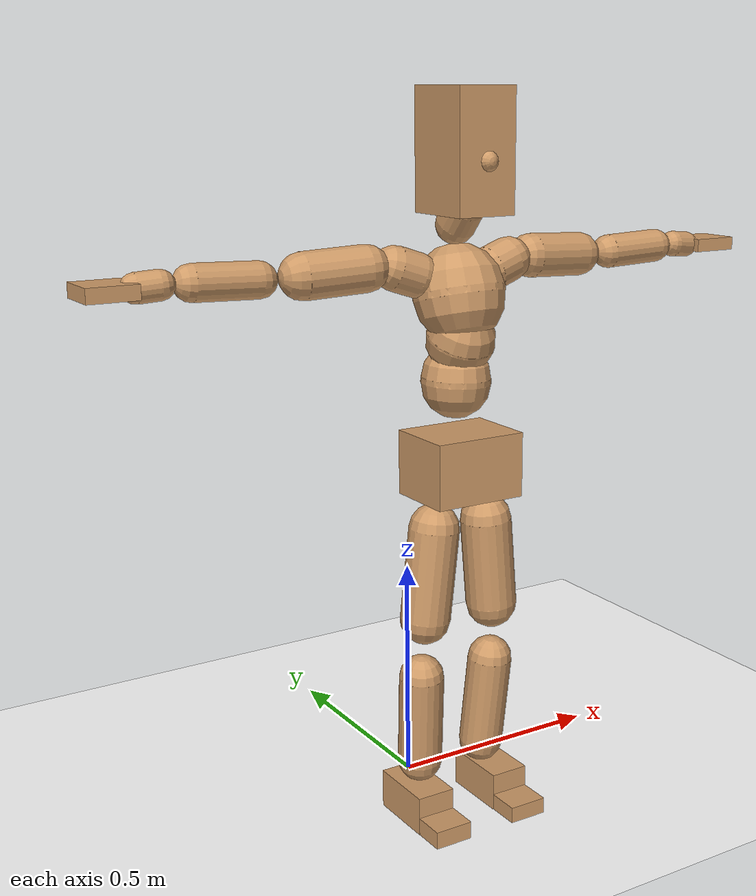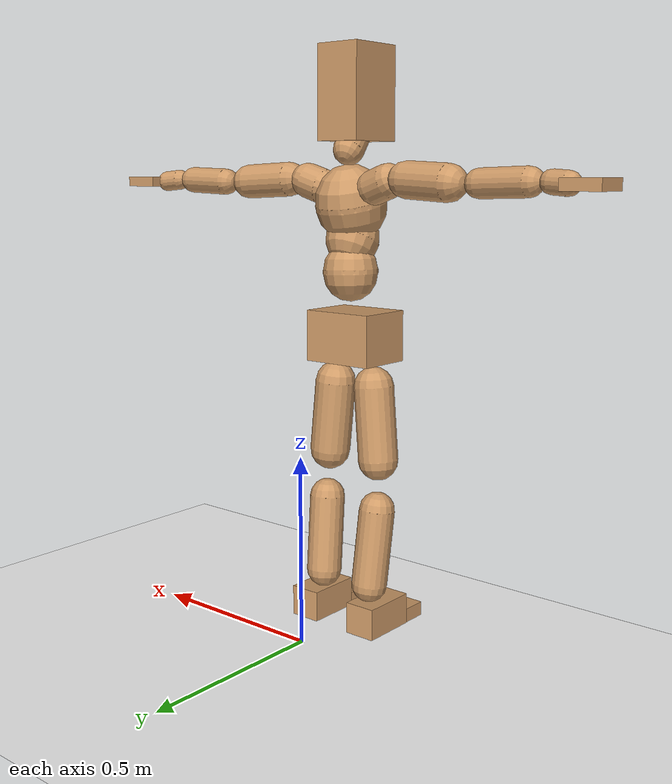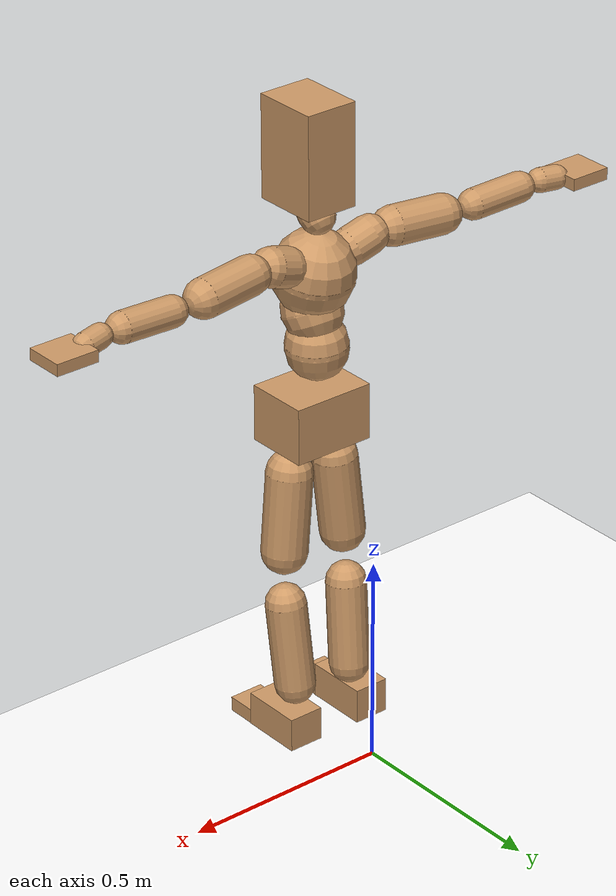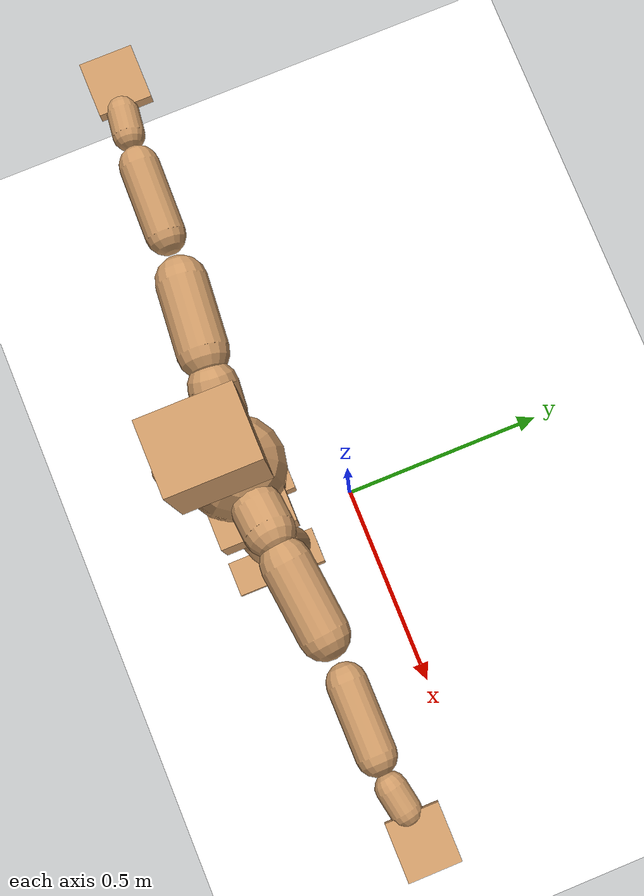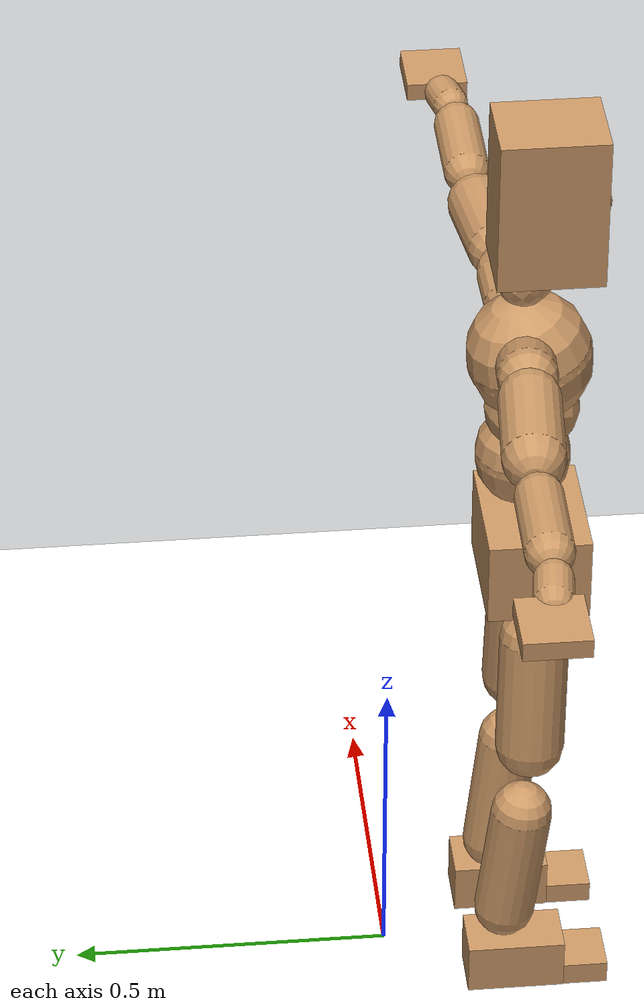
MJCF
<mujoco model="humanoid">
  <option integrator="implicitfast" />

  <visual>
    <global offwidth="1280" offheight="960" />
    <headlight active="1" ambient="0.34 0.34 0.34" diffuse="0.5 0.5 0.5" />
  </visual>

  <default>
    <joint damping="2" stiffness="2" armature="0.01" limited="true" solimplimit="0 .99 .01" />
    <geom condim="1" friction="0.7 0.005 0.0001" solimp=".99 .99 .003" solref="0.015 1" margin="0.001" rgba="0.8 0.6 .4 1" />
    <default class="smplcontact">
      <geom condim="3" friction="1. 0.005 0.0001" solref="0.015 1" solimp="0.98 0.98 0.001" priority="1" />
    </default>
    <default class="stiff_medium">
      <joint stiffness="10" />
    </default>
    <default class="stiff_medium_higher">
      <joint stiffness="50" />
    </default>
    <default class="stiff_high">
      <joint stiffness="100" />
    </default>
  </default>

  <asset>
    <texture type="skybox" builtin="gradient" rgb1="0.99 0.99 0.99" rgb2="0.608 0.828 0.892" width="100" />
    <texture builtin="flat" height="1278" mark="cross" markrgb="1 1 1" name="texgeom" random="0.01" rgb1="0.8 0.6 0.4" rgb2="0.8 0.6 0.4" type="cube" width="127" />
    <texture name="texplane" type="2d" builtin="checker" markrgb="1 1 1" rgb1="0.756 0.772 0.76" rgb2="0.6 0.6 0.6" width="100" height="100" />
    <material name="MatPlane" reflectance="0.5" texture="texplane" texrepeat="1 1" texuniform="true" />
    <material name="geom" texture="texgeom" texuniform="true" />
  </asset>

  <worldbody>
    <light name="tracking_light" pos="0 0 7" dir="0 0 -1" directional="true" cutoff="100" exponent="1" diffuse="1 1 1" specular="0.1 0.1 0.1" mode="trackcom" />
    <camera name="back" pos="0 3 2.4" xyaxes="-1 0 0 0 -1 2" mode="trackcom" />
    <camera name="side" pos="-3 0 2.4" xyaxes="0 -1 0 1 0 2" mode="trackcom" />
    <camera name="front_side" pos="-2.8 -2.8 0.8" xyaxes="0.5 -0.5 0 0.1 0.1 1" mode="trackcom" />
    <geom condim="3" name="floor" pos="0 0 0" rgba="1 1 1 1" size="100 100 .2" type="plane" material="MatPlane" />
    <body name="Pelvis" pos="-0.0018 -0.2233 0.804655" euler="90 0 0">
      <site name="Pelvis" size="0.01" />
      <freejoint name="Pelvis" />
      <geom type="box" pos="-0.0000 -0.0121 -0.0055" size="0.100882 0.0681351 0.0783271" quat="1.0000 0.0000 0.0000 0.0000" density="3165.830099" name="Pelvis" />
      <body name="L_Hip" pos="0.0595963 -0.0783755 -0.005831">
        <joint name="L_Hip_x" type="hinge" pos="0 0 0" axis="1 0 0" stiffness="5.858664803921569" range="-160.0 22.92" class="stiff_medium" damping="8.157736128308313" armature="0.00504845091018475"/>
        <joint name="L_Hip_y" type="hinge" pos="0 0 0" axis="0 1 0" stiffness="5.863729215686274" range="-70.0 70.0" class="stiff_medium" damping="5.549398567342286" armature="0.005251917905219361"/>
        <joint name="L_Hip_z" type="hinge" pos="0 0 0" axis="0 0 1" stiffness="5.862767647058824" range="-28.65 90.0" class="stiff_medium" damping="5.4402314378193095" armature="0.005048147884879089"/>
        <geom type="capsule" density="2040.816327" fromto="0.00591675 -0.0643125 -0.00077175 0.0234955 -0.257422 -0.003087" size="0.0545812" name="L_Hip" />
        <body name="L_Knee" pos="0.0294122 -0.321734 -0.00385875">
          <joint name="L_Knee_x" type="hinge" pos="0 0 0" axis="1 0 0" range="-5.16 171.89" damping="4.373676816880887" armature="0.005082830100464531" stiffness="1.1760825490196078"/>
          <joint name="L_Knee_y" type="hinge" pos="0 0 0" axis="0 1 0" range="-4.58 6.88" damping="4.455800905934737" armature="0.005287404884048694" stiffness="1.1734349215686275"/>
          <joint name="L_Knee_z" type="hinge" pos="0 0 0" axis="0 0 1" range="-6.88 4.58" damping="4.376293001364985" armature="0.005081346337037272" stiffness="1.1778337843137254"/>
          <geom type="capsule" density="1234.567901" fromto="-0.00231525 -0.068257 -0.00746025 -0.00934675 -0.273028 -0.0300125" size="0.0480138" name="L_Knee" />
          <body name="L_Ankle" pos="-0.011662 -0.341285 -0.0374728">
            <joint name="L_Ankle_x" type="hinge" pos="0 0 0" axis="1 0 0" range="-45.84 45.84" class="stiff_medium" damping="3.3708241485250974" armature="0.005265384386623121" stiffness="5.9943156862745095"/>
            <joint name="L_Ankle_y" type="hinge" pos="0 0 0" axis="0 1 0" range="-74.48 22.92" class="stiff_medium" damping="1.6868449891564883" armature="0.005274340362962429" stiffness="5.994316764705882"/>
            <joint name="L_Ankle_z" type="hinge" pos="0 0 0" axis="0 0 1" range="-4.58 4.58" class="stiff_medium" damping="3.3923859416463378" armature="0.005332957912796404" stiffness="5.994319019607843"/>
            <geom type="box" pos="0.0199798 -0.0204943 0.0207515" size="0.0428663 0.04118 0.0754375" quat="1.0000 0.0000 0.0000 0.0000" density="449.071558" name="L_Ankle" class="smplcontact" />
            <body name="L_Toe" pos="0.022638 -0.0478485 0.1023">
              <joint name="L_Toe_x" type="hinge" pos="0 0 0" axis="1 0 0" range="-91.67 22.92" armature="0.005366936148607184" damping="1.1343911155734243" stiffness="1.1988620392156863"/>
              <joint name="L_Toe_y" type="hinge" pos="0 0 0" axis="0 1 0" range="-4.58 4.58" armature="0.0054080350435417495" damping="1.1387262431516134" stiffness="1.1988619215686276"/>
              <joint name="L_Toe_z" type="hinge" pos="0 0 0" axis="0 0 1" range="-4.58 4.58" armature="0.005491136579323398" damping="1.1474414573845786" stiffness="1.1988610000000002"/>
              <geom type="box" pos="-0.0025725 0.00471625 0.021266" size="0.0424225 0.01775 0.04402" quat="1.0000 0.0000 0.0000 0.0000" density="423.206892" name="L_Toe" class="smplcontact" />
            </body>
          </body>
        </body>
      </body>
      <body name="R_Hip" pos="-0.0580528 -0.0776037 -0.00368725">
        <joint name="R_Hip_x" type="hinge" pos="0 0 0" axis="1 0 0" stiffness="5.858664803921569" range="-160.0 22.92" class="stiff_medium" damping="8.157736128308313" armature="0.00504845091018475"/>
        <joint name="R_Hip_y" type="hinge" pos="0 0 0" axis="0 1 0" stiffness="5.863729215686274" range="-70.0 70.0" class="stiff_medium" damping="5.549398567342286" armature="0.005251917905219361"/>
        <joint name="R_Hip_z" type="hinge" pos="0 0 0" axis="0 0 1" stiffness="5.862767647058824" range="-90.0 28.65" class="stiff_medium" damping="5.4402314378193095" armature="0.005048147884879089"/>
        <geom type="capsule" density="2040.816327" fromto="-0.00660275 -0.0655987 -0.0015435 -0.0262395 -0.262481 -0.00608825" size="0.0537825" name="R_Hip" />
        <body name="R_Knee" pos="-0.0328423 -0.32808 -0.00763175">
          <joint name="R_Knee_x" type="hinge" pos="0 0 0" axis="1 0 0" range="-5.16 171.89" damping="4.373676816880887" armature="0.005082830100464531" stiffness="1.1760825490196078"/>
          <joint name="R_Knee_y" type="hinge" pos="0 0 0" axis="0 1 0" range="-6.88 4.58" damping="4.455800905934737" armature="0.005287404884048694" stiffness="1.1734349215686275"/>
          <joint name="R_Knee_z" type="hinge" pos="0 0 0" axis="0 0 1" range="-4.58 6.88" damping="4.376293001364985" armature="0.005081346337037272" stiffness="1.1778337843137254"/>
          <geom type="capsule" density="1234.567901" fromto="0.002744 -0.0683427 -0.00728875 0.0108045 -0.273285 -0.0289835" size="0.0480138" name="R_Knee" />
          <body name="R_Ankle" pos="0.0135485 -0.341628 -0.0362722">
            <joint name="R_Ankle_x" type="hinge" pos="0 0 0" axis="1 0 0" range="-45.84 45.84" class="stiff_medium" damping="3.3708241485250974" armature="0.005265384386623121" stiffness="5.9943156862745095"/>
            <joint name="R_Ankle_y" type="hinge" pos="0 0 0" axis="0 1 0" range="-22.92 74.48" class="stiff_medium" damping="1.6868449891564883" armature="0.005274340362962429" stiffness="5.994316764705882"/>
            <joint name="R_Ankle_z" type="hinge" pos="0 0 0" axis="0 0 1" range="-4.58 4.58" class="stiff_medium" damping="3.3923859416463378" armature="0.005332957912796404" stiffness="5.994319019607843"/>
            <geom type="box" pos="-0.018179 -0.0149205 0.021952" size="0.0428663 0.0424225 0.0767687" quat="1.0000 0.0000 0.0000 0.0000" density="434.700981" name="R_Ankle" class="smplcontact" />
            <body name="R_Toe" pos="-0.0217805 -0.0412457 0.10573">
              <joint name="R_Toe_x" type="hinge" pos="0 0 0" axis="1 0 0" range="-91.67 22.92" armature="0.005366936148607184" damping="1.1343911155734243" stiffness="1.1988620392156863"/>
              <joint name="R_Toe_y" type="hinge" pos="0 0 0" axis="0 1 0" range="-4.58 4.58" armature="0.0054080350435417495" damping="1.1387262431516134" stiffness="1.1988619215686276"/>
              <joint name="R_Toe_z" type="hinge" pos="0 0 0" axis="0 0 1" range="-4.58 4.58" armature="0.005491136579323398" damping="1.1474414573845786" stiffness="1.1988610000000002"/>
              <geom type="box" pos="0.0036015 0.00385875 0.0194653" size="0.0425112 0.01917 0.0437537" quat="1.0000 0.0000 0.0000 0.0000" density="407.384095" name="R_Toe" class="smplcontact" />
            </body>
          </body>
        </body>
      </body>
      <body name="Torso" pos="-0.0022655 0.0987758 -0.0241955">
        <joint name="Torso_x" type="hinge" pos="0 0 0" axis="1 0 0" range="-25.78 57.3" class="stiff_medium" damping="12.039171533837884" armature="0.00788915989130321" stiffness="8.16544632653061"/>
        <joint name="Torso_y" type="hinge" pos="0 0 0" axis="0 1 0" range="-57.3 57.3" class="stiff_high" damping="13.382041007777447" armature="0.00536794449664452" stiffness="83.402046"/>
        <joint name="Torso_z" type="hinge" pos="0 0 0" axis="0 0 1" range="-34.38 34.38" class="stiff_high" damping="15.04605082396192" armature="0.0070186082636561654" stiffness="80.63694285714286"/>
        <geom type="capsule" density="2040.816327" fromto="0.0022655 0.055097 0.0004531 0.0027186 0.0673307 0.00054372" size="0.0725705" name="Torso" />
        <body name="Spine" pos="0.0049841 0.122518 0.00099682">
          <joint name="Spine_x" type="hinge" pos="0 0 0" axis="1 0 0" stiffness="8.297193921568628" range="-25.78 57.3" class="stiff_medium" damping="12.659779290950436" armature="0.00858496462568865"/>
          <joint name="Spine_y" type="hinge" pos="0 0 0" axis="0 1 0" stiffness="8.448736938775511" range="-57.3 57.3" class="stiff_high" damping="5.379984706205011" armature="0.005352914666555094"/>
          <joint name="Spine_z" type="hinge" pos="0 0 0" axis="0 0 1" stiffness="16.868757959183675" range="-34.38 34.38" class="stiff_high" damping="9.08524195232766" armature="0.006796062935797872"/>
          <geom type="capsule" density="2040.816327" fromto="0.00063434 0.0215676 0.0103307 0.00072496 0.0263704 0.0126868" size="0.0712494" name="Spine" />
          <body name="Chest" pos="0.0013593 0.047938 0.0230175">
            <joint name="Chest_x" type="hinge" pos="0 0 0" axis="1 0 0" stiffness="8.55014304347826" range="-25.78 57.3" class="stiff_medium" damping="13.127413391062227" armature="0.008957821925111208"/>
            <joint name="Chest_y" type="hinge" pos="0 0 0" axis="0 1 0" stiffness="7.7291955" range="-57.3 57.3" class="stiff_high" damping="5.136209430674413" armature="0.005332995061498634"/>
            <joint name="Chest_z" type="hinge" pos="0 0 0" axis="0 0 1" stiffness="17.504206808510638" range="-34.38 34.38" class="stiff_high" damping="9.147043915709407" armature="0.0066387543062597825"/>
            <geom type="capsule" density="2040.816327" fromto="-0.00081558 0.0618028 -0.0156773 -0.0009062 0.0754865 -0.0192114" size="0.0945587" name="Chest" />
            <body name="Neck" pos="-0.00253736 0.193836 -0.038876">
              <joint name="Neck_x" type="hinge" pos="0 0 0" axis="1 0 0" range="-28.65 57.3" class="stiff_medium_higher" damping="11.998311156594458" armature="0.01233371859807078" stiffness="58.360124509803924"/>
              <joint name="Neck_y" type="hinge" pos="0 0 0" axis="0 1 0" range="-40.11 40.11" class="stiff_medium_higher" damping="12.127396289478726" armature="0.012534841074194407" stiffness="58.66597745098039"/>
              <joint name="Neck_z" type="hinge" pos="0 0 0" axis="0 0 1" range="-40.11 40.11" class="stiff_medium_higher" damping="12.098455989329596" armature="0.012345106429410238" stiffness="59.283667647058834"/>
              <geom type="capsule" density="1000" fromto="0.0009062 0.0117806 0.00933386 0.00371542 0.0471224 0.0372448" size="0.0411453" name="Neck" />
              <body name="Head" pos="0.00529776 0.066222 0.0522644">
                <joint name="Head_x" type="hinge" pos="0 0 0" axis="1 0 0" range="-28.65 57.3" class="stiff_medium_higher" damping="2.463602297655868" armature="0.01264024522543157" stiffness="60.019961764705876"/>
                <joint name="Head_y" type="hinge" pos="0 0 0" axis="0 1 0" range="-40.11 40.11" class="stiff_medium_higher" damping="2.5081869877916896" armature="0.013101890437867114" stiffness="60.019983333333336"/>
                <joint name="Head_z" type="hinge" pos="0 0 0" axis="0 0 1" range="-40.11 40.11" class="stiff_medium_higher" damping="2.4613733842754315" armature="0.012617385631485043" stiffness="60.019950980392146"/>
                <geom type="box" pos="-0.00427896 0.0892469 -0.0118181" size="0.0640057 0.121885 0.0802712" quat="1.0000 0.0000 0.0000 0.0000" density="1018.069894" name="Head" />
                <geom type="capsule" name="nose" size="0.021124 0.010562" pos="0 0.071316 0.05094" quat="1 0 0 0" mass="0" contype="0" conaffinity="0" />
              </body>
            </body>
            <body name="L_Thorax" pos="0.0684614 0.105733 -0.0296261">
              <joint name="L_Thorax_x" type="hinge" pos="0 0 0" axis="1 0 0" range="-10.89 4.58" class="stiff_medium_higher" damping="11.286888481800954" armature="0.005312322668026983" stiffness="29.97602450980392"/>
              <joint name="L_Thorax_y" type="hinge" pos="0 0 0" axis="0 1 0" range="-28.65 17.19" class="stiff_medium_higher" damping="11.181288330629739" armature="0.005216124048121922" stiffness="29.960274999999996"/>
              <joint name="L_Thorax_z" type="hinge" pos="0 0 0" axis="0 0 1" range="-31.51 40.11" class="stiff_medium_higher" damping="11.181237861054253" armature="0.005216037190089436" stiffness="29.960503431372548"/>
              <geom type="capsule" density="1000" fromto="0.0158122 0.00529968 -0.00156384 0.0632486 0.0211987 -0.00616848" size="0.0462387" name="L_Thorax" />
              <body name="L_Shoulder" pos="0.0790608 0.0264984 -0.00773232">
                <joint name="L_Shoulder_x" type="hinge" pos="0 0 0" axis="1 0 0" range="-97.4 97.4" class="stiff_medium" damping="3.398666602922135" armature="0.005350103227600931" stiffness="5.99725431372549"/>
                <joint name="L_Shoulder_y" type="hinge" pos="0 0 0" axis="0 1 0" range="-108.86 80.21" class="stiff_medium" damping="3.355897158561662" armature="0.005219560579754148" stiffness="5.993504607843137"/>
                <joint name="L_Shoulder_z" type="hinge" pos="0 0 0" axis="0 0 1" range="-97.4 85.94" class="stiff_medium" damping="3.355852138773699" armature="0.0052194481154941835" stiffness="5.99347294117647"/>
                <geom type="capsule" density="1000" fromto="0.0450907 -0.00225888 -0.0047784 0.18045 -0.00886176 -0.0191136" size="0.0458838" name="L_Shoulder" />
                <body name="L_Elbow" pos="0.22554 -0.0111206 -0.023892">
                  <joint name="L_Elbow_x" type="hinge" pos="0 0 0" axis="1 0 0" range="-17.19 4.58" damping="2.850367207384555" armature="0.005410333252588446" stiffness="1.201344588235294"/>
                  <joint name="L_Elbow_y" type="hinge" pos="0 0 0" axis="0 1 0" range="-180.0 17.19" damping="2.8041443950265847" armature="0.005236300841579246" stiffness="1.201340568627451"/>
                  <joint name="L_Elbow_z" type="hinge" pos="0 0 0" axis="0 0 1" range="-100.84 4.58" damping="2.8040717701946605" armature="0.005235710865560959" stiffness="1.201413705882353"/>
                  <geom type="capsule" density="1000" fromto="0.0432662 0.00156384 -0.00017376 0.173239 0.00625536 -0.00078192" size="0.0359437" name="L_Elbow" />
                  <body name="L_Wrist" pos="0.216505 0.0078192 -0.00104256">
                    <joint name="L_Wrist_x" type="hinge" pos="0 0 0" axis="1 0 0" range="-180.0 22.92" armature="0.0054277975453075" damping="1.1460982892064178" stiffness="1.2100131568627452"/>
                    <joint name="L_Wrist_y" type="hinge" pos="0 0 0" axis="0 1 0" range="-17.19 17.19" armature="0.005293043706218315" damping="1.1314797091739586" stiffness="1.209366862745098"/>
                    <joint name="L_Wrist_z" type="hinge" pos="0 0 0" axis="0 0 1" range="-22.92 22.92" armature="0.005285531244232116" damping="1.1307752240654079" stiffness="1.2095781372549022"/>
                    <geom type="capsule" density="1000" fromto="0.0145958 -0.00139008 -0.0026064 0.0583834 -0.0056472 -0.0104256" size="0.0282225" name="L_Wrist" class="smplcontact" />
                    <body name="L_Hand" pos="0.0729792 -0.00712416 -0.0129451">
                      <joint name="L_Hand_x" type="hinge" pos="0 0 0" axis="1 0 0" range="-17.19 17.19" armature="0.005496063469789025" damping="1.1554951138080702" stiffness="1.2146593333333335"/>
                      <joint name="L_Hand_y" type="hinge" pos="0 0 0" axis="0 1 0" range="-51.57 51.57" armature="0.0053851004928507674" damping="1.143771088870239" stiffness="1.2146591372549023"/>
                      <joint name="L_Hand_z" type="hinge" pos="0 0 0" axis="0 0 1" range="-91.67 91.67" armature="0.00535552189235073" damping="1.1406255184100385" stiffness="1.2146590000000002"/>
                      <geom type="box" pos="0.0428318 0.0008688 -0.00503904" size="0.0519187 0.0140225 0.0477475" quat="1.0000 0.0000 0.0000 0.0000" density="400.552564" name="L_Hand" class="smplcontact" />
                    </body>
                  </body>
                </body>
              </body>
            </body>
            <body name="R_Thorax" pos="-0.0710678 0.103213 -0.0335357">
              <joint name="R_Thorax_x" type="hinge" pos="0 0 0" axis="1 0 0" range="-10.89 4.58" class="stiff_medium_higher" damping="11.286888481800954" armature="0.005312322668026983" stiffness="29.97602450980392"/>
              <joint name="R_Thorax_y" type="hinge" pos="0 0 0" axis="0 1 0" range="-17.19 28.65" class="stiff_medium_higher" damping="11.181288330629739" armature="0.005216124048121922" stiffness="29.960274999999996"/>
              <joint name="R_Thorax_z" type="hinge" pos="0 0 0" axis="0 0 1" range="-40.11 31.51" class="stiff_medium_higher" damping="11.181237861054253" armature="0.005216037190089436" stiffness="29.960503431372548"/>
              <geom type="capsule" density="1000" fromto="-0.016681 0.0056472 -0.00156384 -0.0667238 0.0225888 -0.00634224" size="0.0453512" name="R_Thorax" />
              <body name="R_Shoulder" pos="-0.0834048 0.0283229 -0.00790608">
                <joint name="R_Shoulder_x" type="hinge" pos="0 0 0" axis="1 0 0" range="-97.4 97.4" class="stiff_medium" damping="3.398666602922135" armature="0.005350103227600931" stiffness="5.99725431372549"/>
                <joint name="R_Shoulder_y" type="hinge" pos="0 0 0" axis="0 1 0" range="-80.21 108.86" class="stiff_medium" damping="3.355897158561662" armature="0.005219560579754148" stiffness="5.993504607843137"/>
                <joint name="R_Shoulder_z" type="hinge" pos="0 0 0" axis="0 0 1" range="-85.94 97.4" class="stiff_medium" damping="3.355852138773699" armature="0.0052194481154941835" stiffness="5.99347294117647"/>
                <geom type="capsule" density="1000" fromto="-0.0440482 -0.00234576 -0.00373584 -0.176366 -0.00929616 -0.0148565" size="0.0471263" name="R_Shoulder" />
                <body name="R_Elbow" pos="-0.220415 -0.011555 -0.0185923">
                  <joint name="R_Elbow_x" type="hinge" pos="0 0 0" axis="1 0 0" range="-17.19 4.58" damping="2.850367207384555" armature="0.005410333252588446" stiffness="1.201344588235294"/>
                  <joint name="R_Elbow_y" type="hinge" pos="0 0 0" axis="0 1 0" range="-17.19 180.0" damping="2.8041443950265847" armature="0.005236300841579246" stiffness="1.201340568627451"/>
                  <joint name="R_Elbow_z" type="hinge" pos="0 0 0" axis="0 0 1" range="-4.58 100.84" damping="2.8040717701946605" armature="0.005235710865560959" stiffness="1.201413705882353"/>
                  <geom type="capsule" density="1000" fromto="-0.0443957 0.00139008 -0.00095568 -0.177409 0.00538656 -0.00382272" size="0.03621" name="R_Elbow" />
                  <body name="R_Wrist" pos="-0.221805 0.00677664 -0.00486528">
                    <joint name="R_Wrist_x" type="hinge" pos="0 0 0" axis="1 0 0" range="-180.0 22.92" armature="0.0054277975453075" damping="1.1460982892064178" stiffness="1.2100131568627452"/>
                    <joint name="R_Wrist_y" type="hinge" pos="0 0 0" axis="0 1 0" range="-17.19 17.19" armature="0.005293043706218315" damping="1.1314797091739586" stiffness="1.209366862745098"/>
                    <joint name="R_Wrist_z" type="hinge" pos="0 0 0" axis="0 0 1" range="-22.92 22.92" armature="0.005285531244232116" damping="1.1307752240654079" stiffness="1.2095781372549022"/>
                    <geom type="capsule" density="1000" fromto="-0.0146827 -0.00104256 -0.00182448 -0.0588178 -0.00425712 -0.00721104" size="0.0289325" name="R_Wrist" class="smplcontact" />
                    <body name="R_Hand" pos="-0.0735005 -0.00529968 -0.00894864">
                      <joint name="R_Hand_x" type="hinge" pos="0 0 0" axis="1 0 0" range="-17.19 17.19" armature="0.005496063469789025" damping="1.1554951138080702" stiffness="1.2146593333333335"/>
                      <joint name="R_Hand_y" type="hinge" pos="0 0 0" axis="0 1 0" range="-51.57 51.57" armature="0.0053851004928507674" damping="1.143771088870239" stiffness="1.2146591372549023"/>
                      <joint name="R_Hand_z" type="hinge" pos="0 0 0" axis="0 0 1" range="-91.67 91.67" armature="0.00535552189235073" damping="1.1406255184100385" stiffness="1.2146590000000002"/>
                      <geom type="box" pos="-0.0401386 -0.00078192 -0.00686352" size="0.0504987 0.014555 0.0484575" quat="1.0000 0.0000 0.0000 0.0000" density="403.679611" name="R_Hand" class="smplcontact" />
                    </body>
                  </body>
                </body>
              </body>
            </body>
          </body>
        </body>
      </body>
    </body>
  </worldbody>
  <actuator>
    <general name="L_Hip_x" joint="L_Hip_x" biastype="affine" gainprm="168.33705336355118" biasprm="-126.15155956197023 -105.45596647058825 -1.0876981504411085" ctrllimited="true" ctrlrange="-1 1" forcerange="-210.9119329411765 210.9119329411765" />
    <general name="L_Hip_y" joint="L_Hip_y" biastype="affine" gainprm="128.95014038647886" biasprm="0.0 -105.54712588235293 -1.1098797134684573" ctrllimited="true" ctrlrange="-1 1" forcerange="-211.09425176470586 211.09425176470586" />
    <general name="L_Hip_z" joint="L_Hip_z" biastype="affine" gainprm="109.2673227437685" biasprm="56.498527183566765 -105.52981764705883 -1.088046287563862" ctrllimited="true" ctrlrange="-1 1" forcerange="-211.05963529411767 211.05963529411767" />
    <general name="L_Knee_x" joint="L_Knee_x" biastype="affine" gainprm="163.53985875237092" biasprm="154.0073462286518 -105.84742941176471 -1.0934192042202218" ctrllimited="true" ctrlrange="-1 1" forcerange="-211.69485882352942 211.69485882352942" />
    <general name="L_Knee_y" joint="L_Knee_y" biastype="affine" gainprm="10.561692225773275" biasprm="2.1197113542127863 -105.60914294117647 -1.1139502264836842" ctrllimited="true" ctrlrange="-1 1" forcerange="-211.21828588235294 211.21828588235294" />
    <general name="L_Knee_z" joint="L_Knee_z" biastype="affine" gainprm="10.601284906716362" biasprm="-2.1276575292711724 -106.00504058823529 -1.0940732503412463" ctrllimited="true" ctrlrange="-1 1" forcerange="-212.01008117647058 212.01008117647058" />
    <general name="L_Ankle_x" joint="L_Ankle_x" biastype="affine" gainprm="43.162252098599154" biasprm="0.0 -53.94884117647059 -1.1236080495083658" ctrllimited="true" ctrlrange="-1 1" forcerange="-107.89768235294117 107.89768235294117" />
    <general name="L_Ankle_y" joint="L_Ankle_y" biastype="affine" gainprm="45.855193179991495" biasprm="-24.27406324805299 -53.94885088235294 -1.1245633261043255" ctrllimited="true" ctrlrange="-1 1" forcerange="-107.89770176470589 107.89770176470589" />
    <general name="L_Ankle_z" joint="L_Ankle_z" biastype="affine" gainprm="4.312461268317647" biasprm="0.0 -53.94887117647059 -1.1307953138821125" ctrllimited="true" ctrlrange="-1 1" forcerange="-107.89774235294118 107.89774235294118" />
    <general name="L_Toe_x" joint="L_Toe_x" biastype="affine" gainprm="43.15844623010053" biasprm="-25.893561203590288 -43.15903341176471 -0.4537564462293697" ctrllimited="true" ctrlrange="-1 1" forcerange="-86.31806682352942 86.31806682352942" />
    <general name="L_Toe_y" joint="L_Toe_y" biastype="affine" gainprm="3.4499635978091856" biasprm="0.0 -43.1590291764706 -0.4554904972606454" ctrllimited="true" ctrlrange="-1 1" forcerange="-86.3180583529412 86.3180583529412" />
    <general name="L_Toe_z" joint="L_Toe_z" biastype="affine" gainprm="3.449960945812187" biasprm="0.0 -43.15899600000001 -0.4589765829538315" ctrllimited="true" ctrlrange="-1 1" forcerange="-86.31799200000002 86.31799200000002" />
    <general name="R_Hip_x" joint="R_Hip_x" biastype="affine" gainprm="168.33705336355118" biasprm="-126.15155956197023 -105.45596647058825 -1.0876981504411085" ctrllimited="true" ctrlrange="-1 1" forcerange="-210.9119329411765 210.9119329411765" />
    <general name="R_Hip_y" joint="R_Hip_y" biastype="affine" gainprm="128.95014038647886" biasprm="0.0 -105.54712588235293 -1.1098797134684573" ctrllimited="true" ctrlrange="-1 1" forcerange="-211.09425176470586 211.09425176470586" />
    <general name="R_Hip_z" joint="R_Hip_z" biastype="affine" gainprm="109.2673227437685" biasprm="-56.498527183566765 -105.52981764705883 -1.088046287563862" ctrllimited="true" ctrlrange="-1 1" forcerange="-211.05963529411767 211.05963529411767" />
    <general name="R_Knee_x" joint="R_Knee_x" biastype="affine" gainprm="163.53985875237092" biasprm="154.0073462286518 -105.84742941176471 -1.0934192042202218" ctrllimited="true" ctrlrange="-1 1" forcerange="-211.69485882352942 211.69485882352942" />
    <general name="R_Knee_y" joint="R_Knee_y" biastype="affine" gainprm="10.561692225773275" biasprm="-2.1197113542127863 -105.60914294117647 -1.1139502264836842" ctrllimited="true" ctrlrange="-1 1" forcerange="-211.21828588235294 211.21828588235294" />
    <general name="R_Knee_z" joint="R_Knee_z" biastype="affine" gainprm="10.601284906716362" biasprm="2.1276575292711724 -106.00504058823529 -1.0940732503412463" ctrllimited="true" ctrlrange="-1 1" forcerange="-212.01008117647058 212.01008117647058" />
    <general name="R_Ankle_x" joint="R_Ankle_x" biastype="affine" gainprm="43.162252098599154" biasprm="0.0 -53.94884117647059 -1.1236080495083658" ctrllimited="true" ctrlrange="-1 1" forcerange="-107.89768235294117 107.89768235294117" />
    <general name="R_Ankle_y" joint="R_Ankle_y" biastype="affine" gainprm="45.855193179991495" biasprm="24.27406324805299 -53.94885088235294 -1.1245633261043255" ctrllimited="true" ctrlrange="-1 1" forcerange="-107.89770176470589 107.89770176470589" />
    <general name="R_Ankle_z" joint="R_Ankle_z" biastype="affine" gainprm="4.312461268317647" biasprm="0.0 -53.94887117647059 -1.1307953138821125" ctrllimited="true" ctrlrange="-1 1" forcerange="-107.89774235294118 107.89774235294118" />
    <general name="R_Toe_x" joint="R_Toe_x" biastype="affine" gainprm="43.15844623010053" biasprm="-25.893561203590288 -43.15903341176471 -0.4537564462293697" ctrllimited="true" ctrlrange="-1 1" forcerange="-86.31806682352942 86.31806682352942" />
    <general name="R_Toe_y" joint="R_Toe_y" biastype="affine" gainprm="3.4499635978091856" biasprm="0.0 -43.1590291764706 -0.4554904972606454" ctrllimited="true" ctrlrange="-1 1" forcerange="-86.3180583529412 86.3180583529412" />
    <general name="R_Toe_z" joint="R_Toe_z" biastype="affine" gainprm="3.449960945812187" biasprm="0.0 -43.15899600000001 -0.4589765829538315" ctrllimited="true" ctrlrange="-1 1" forcerange="-86.31799200000002 86.31799200000002" />
    <general name="Torso_x" joint="Torso_x" biastype="affine" gainprm="142.08068096602494" biasprm="53.90446634628196 -195.97071183673464 -3.210445742356769" ctrllimited="true" ctrlrange="-1 1" forcerange="-293.95606775510197 293.95606775510197" />
    <general name="Torso_y" joint="Torso_y" biastype="affine" gainprm="200.17965482607988" biasprm="0.0 -200.1649104 -2.6764082015554895" ctrllimited="true" ctrlrange="-1 1" forcerange="-300.24736559999997 300.24736559999997" />
    <general name="Torso_z" joint="Torso_z" biastype="affine" gainprm="116.12575106879169" biasprm="0.0 -193.52866285714285 -3.009210164792384" ctrllimited="true" ctrlrange="-1 1" forcerange="-290.29299428571426 290.29299428571426" />
    <general name="Spine_x" joint="Spine_x" biastype="affine" gainprm="144.3731200159049" biasprm="54.774202490386635 -199.1326541176471 -3.3759411442534497" ctrllimited="true" ctrlrange="-1 1" forcerange="-298.6989811764706 298.6989811764706" />
    <general name="Spine_y" joint="Spine_y" biastype="affine" gainprm="202.78462282812973" biasprm="0.0 -202.76968653061226 -2.6899923531025056" ctrllimited="true" ctrlrange="-1 1" forcerange="-304.1545297959184 304.1545297959184" />
    <general name="Spine_z" joint="Spine_z" biastype="affine" gainprm="121.46400385480027" biasprm="0.0 -202.42509551020407 -3.0284139841092204" ctrllimited="true" ctrlrange="-1 1" forcerange="-303.6376432653061 303.6376432653061" />
    <general name="Chest_x" joint="Chest_x" biastype="affine" gainprm="148.77449405640374" biasprm="56.444054557749695 -205.2034330434782 -3.500643570949927" ctrllimited="true" ctrlrange="-1 1" forcerange="-307.80514956521733 307.80514956521733" />
    <general name="Chest_y" joint="Chest_y" biastype="affine" gainprm="185.51435623932895" biasprm="0.0 -185.50069200000002 -2.5681047153372063" ctrllimited="true" ctrlrange="-1 1" forcerange="-278.251038 278.251038" />
    <general name="Chest_z" joint="Chest_z" biastype="affine" gainprm="126.03957258789471" biasprm="0.0 -210.05048170212766 -3.0490146385698025" ctrllimited="true" ctrlrange="-1 1" forcerange="-315.0757225531915 315.0757225531915" />
    <general name="Neck_x" joint="Neck_x" biastype="affine" gainprm="31.51678863484247" biasprm="10.505596211614156 -42.01928964705883 -0.9598648925275566" ctrllimited="true" ctrlrange="-1 1" forcerange="-84.03857929411765 84.03857929411765" />
    <general name="Neck_y" joint="Neck_y" biastype="affine" gainprm="29.5698306297676" biasprm="0.0 -42.23950376470588 -0.9701917031582982" ctrllimited="true" ctrlrange="-1 1" forcerange="-84.47900752941176 84.47900752941176" />
    <general name="Neck_z" joint="Neck_z" biastype="affine" gainprm="29.881169420550886" biasprm="0.0 -42.68424070588236 -0.9678764791463677" ctrllimited="true" ctrlrange="-1 1" forcerange="-85.36848141176472 85.36848141176472" />
    <general name="Head_x" joint="Head_x" biastype="affine" gainprm="21.608777850725634" biasprm="7.202925950241878 -28.80958164705882 -0.9854409190623472" ctrllimited="true" ctrlrange="-1 1" forcerange="-57.61916329411764 57.61916329411764" />
    <general name="Head_y" joint="Head_y" biastype="affine" gainprm="20.168199908269912" biasprm="0.0 -28.809592000000002 -1.0032747951166758" ctrllimited="true" ctrlrange="-1 1" forcerange="-57.619184000000004 57.619184000000004" />
    <general name="Head_z" joint="Head_z" biastype="affine" gainprm="20.16818903688093" biasprm="0.0 -28.80957647058823 -0.9845493537101726" ctrllimited="true" ctrlrange="-1 1" forcerange="-57.61915294117646 57.61915294117646" />
    <general name="L_Thorax_x" joint="L_Thorax_x" biastype="affine" gainprm="9.71231954131875" biasprm="-3.961521416013015 -71.94245882352942 -0.9029510785440764" ctrllimited="true" ctrlrange="-1 1" forcerange="-143.88491764705884 143.88491764705884" />
    <general name="L_Thorax_y" joint="L_Thorax_y" biastype="affine" gainprm="28.763982638960346" biasprm="-7.190995659740087 -71.90465999999999 -0.8945030664503792" ctrllimited="true" ctrlrange="-1 1" forcerange="-143.80931999999999 143.80931999999999" />
    <general name="L_Thorax_z" joint="L_Thorax_z" biastype="affine" gainprm="44.940928089091635" biasprm="5.396425322063502 -71.90520823529411 -0.8944990288843404" ctrllimited="true" ctrlrange="-1 1" forcerange="-143.81041647058822 143.81041647058822" />
    <general name="L_Shoulder_x" joint="L_Shoulder_x" biastype="affine" gainprm="48.93617576339532" biasprm="0.0 -28.78682070588235 -0.9063110941125694" ctrllimited="true" ctrlrange="-1 1" forcerange="-57.5736414117647 57.5736414117647" />
    <general name="L_Shoulder_y" joint="L_Shoulder_y" biastype="affine" gainprm="47.46703198742214" biasprm="-7.192735317288012 -28.768822117647062 -0.8949059089497766" ctrllimited="true" ctrlrange="-1 1" forcerange="-57.537644235294124 57.537644235294124" />
    <general name="L_Shoulder_z" joint="L_Shoulder_z" biastype="affine" gainprm="46.02824173257908" biasprm="-2.877078925795557 -28.768670117647055 -0.8948939036729864" ctrllimited="true" ctrlrange="-1 1" forcerange="-57.53734023529411 57.53734023529411" />
    <general name="L_Elbow_x" joint="L_Elbow_x" biastype="affine" gainprm="8.216292619570593" biasprm="-4.759184654698449 -43.248405176470584 -0.4560587531815289" ctrllimited="true" ctrlrange="-1 1" forcerange="-86.49681035294117 86.49681035294117" />
    <general name="L_Elbow_y" joint="L_Elbow_y" biastype="affine" gainprm="74.4219256171222" biasprm="-61.44649175781564 -43.248260470588235 -0.4486631032042536" ctrllimited="true" ctrlrange="-1 1" forcerange="-86.49652094117647 86.49652094117647" />
    <general name="L_Elbow_z" joint="L_Elbow_z" biastype="affine" gainprm="39.789223763219454" biasprm="-36.33191689857243 -43.25089341176471 -0.4486514832311457" ctrllimited="true" ctrlrange="-1 1" forcerange="-86.50178682352941 86.50178682352941" />
    <general name="L_Wrist_x" joint="L_Wrist_x" biastype="affine" gainprm="12.856228078781536" biasprm="-9.951982587300432 -7.260078941176472 -0.45843931568256713" ctrllimited="true" ctrlrange="-1 1" forcerange="-14.520157882352944 14.520157882352944" />
    <general name="L_Wrist_y" joint="L_Wrist_y" biastype="affine" gainprm="2.1770207035065985" biasprm="0.0 -7.256201176470588 -0.4525918836695835" ctrllimited="true" ctrlrange="-1 1" forcerange="-14.512402352941177 14.512402352941177" />
    <general name="L_Wrist_z" joint="L_Wrist_z" biastype="affine" gainprm="2.90320136751632" biasprm="0.0 -7.257468823529413 -0.45231008962616315" ctrllimited="true" ctrlrange="-1 1" forcerange="-14.514937647058826 14.514937647058826" />
    <general name="L_Hand_x" joint="L_Hand_x" biastype="affine" gainprm="2.1865478522967807" biasprm="0.0 -7.287956000000001 -0.46219804552322813" ctrllimited="true" ctrlrange="-1 1" forcerange="-14.575912000000002 14.575912000000002" />
    <general name="L_Hand_y" joint="L_Hand_y" biastype="affine" gainprm="6.5596424979888175" biasprm="0.0 -7.287954823529414 -0.4575084355480956" ctrllimited="true" ctrlrange="-1 1" forcerange="-14.575909647058827 14.575909647058827" />
    <general name="L_Hand_z" joint="L_Hand_z" biastype="affine" gainprm="11.660313357416772" biasprm="0.0 -7.287954000000001 -0.4562502073640154" ctrllimited="true" ctrlrange="-1 1" forcerange="-14.575908000000002 14.575908000000002" />
    <general name="R_Thorax_x" joint="R_Thorax_x" biastype="affine" gainprm="9.71231954131875" biasprm="-3.961521416013015 -71.94245882352942 -0.9029510785440764" ctrllimited="true" ctrlrange="-1 1" forcerange="-143.88491764705884 143.88491764705884" />
    <general name="R_Thorax_y" joint="R_Thorax_y" biastype="affine" gainprm="28.763982638960346" biasprm="7.190995659740082 -71.90465999999999 -0.8945030664503792" ctrllimited="true" ctrlrange="-1 1" forcerange="-143.80931999999999 143.80931999999999" />
    <general name="R_Thorax_z" joint="R_Thorax_z" biastype="affine" gainprm="44.940928089091635" biasprm="-5.396425322063502 -71.90520823529411 -0.8944990288843404" ctrllimited="true" ctrlrange="-1 1" forcerange="-143.81041647058822 143.81041647058822" />
    <general name="R_Shoulder_x" joint="R_Shoulder_x" biastype="affine" gainprm="48.93617576339532" biasprm="0.0 -28.78682070588235 -0.9063110941125694" ctrllimited="true" ctrlrange="-1 1" forcerange="-57.5736414117647 57.5736414117647" />
    <general name="R_Shoulder_y" joint="R_Shoulder_y" biastype="affine" gainprm="47.46703198742214" biasprm="7.192735317288012 -28.768822117647062 -0.8949059089497766" ctrllimited="true" ctrlrange="-1 1" forcerange="-57.537644235294124 57.537644235294124" />
    <general name="R_Shoulder_z" joint="R_Shoulder_z" biastype="affine" gainprm="46.02824173257908" biasprm="2.877078925795551 -28.768670117647055 -0.8948939036729864" ctrllimited="true" ctrlrange="-1 1" forcerange="-57.53734023529411 57.53734023529411" />
    <general name="R_Elbow_x" joint="R_Elbow_x" biastype="affine" gainprm="8.216292619570593" biasprm="-4.759184654698449 -43.248405176470584 -0.4560587531815289" ctrllimited="true" ctrlrange="-1 1" forcerange="-86.49681035294117 86.49681035294117" />
    <general name="R_Elbow_y" joint="R_Elbow_y" biastype="affine" gainprm="74.4219256171222" biasprm="61.44649175781564 -43.248260470588235 -0.4486631032042536" ctrllimited="true" ctrlrange="-1 1" forcerange="-86.49652094117647 86.49652094117647" />
    <general name="R_Elbow_z" joint="R_Elbow_z" biastype="affine" gainprm="39.789223763219454" biasprm="36.33191689857242 -43.25089341176471 -0.4486514832311457" ctrllimited="true" ctrlrange="-1 1" forcerange="-86.50178682352941 86.50178682352941" />
    <general name="R_Wrist_x" joint="R_Wrist_x" biastype="affine" gainprm="12.856228078781536" biasprm="-9.951982587300432 -7.260078941176472 -0.45843931568256713" ctrllimited="true" ctrlrange="-1 1" forcerange="-14.520157882352944 14.520157882352944" />
    <general name="R_Wrist_y" joint="R_Wrist_y" biastype="affine" gainprm="2.1770207035065985" biasprm="0.0 -7.256201176470588 -0.4525918836695835" ctrllimited="true" ctrlrange="-1 1" forcerange="-14.512402352941177 14.512402352941177" />
    <general name="R_Wrist_z" joint="R_Wrist_z" biastype="affine" gainprm="2.90320136751632" biasprm="0.0 -7.257468823529413 -0.45231008962616315" ctrllimited="true" ctrlrange="-1 1" forcerange="-14.514937647058826 14.514937647058826" />
    <general name="R_Hand_x" joint="R_Hand_x" biastype="affine" gainprm="2.1865478522967807" biasprm="0.0 -7.287956000000001 -0.46219804552322813" ctrllimited="true" ctrlrange="-1 1" forcerange="-14.575912000000002 14.575912000000002" />
    <general name="R_Hand_y" joint="R_Hand_y" biastype="affine" gainprm="6.5596424979888175" biasprm="0.0 -7.287954823529414 -0.4575084355480956" ctrllimited="true" ctrlrange="-1 1" forcerange="-14.575909647058827 14.575909647058827" />
    <general name="R_Hand_z" joint="R_Hand_z" biastype="affine" gainprm="11.660313357416772" biasprm="0.0 -7.287954000000001 -0.4562502073640154" ctrllimited="true" ctrlrange="-1 1" forcerange="-14.575908000000002 14.575908000000002" />
  </actuator>
  <contact>
    <exclude body1="Torso" body2="Chest" />
    <exclude body1="Head" body2="Chest" />
    <exclude body1="R_Knee" body2="R_Toe" />
    <exclude body1="R_Knee" body2="L_Ankle" />
    <exclude body1="R_Knee" body2="L_Toe" />
    <exclude body1="L_Knee" body2="L_Toe" />
    <exclude body1="L_Knee" body2="R_Ankle" />
    <exclude body1="L_Knee" body2="R_Toe" />
    <exclude body1="L_Shoulder" body2="Chest" />
    <exclude body1="R_Shoulder" body2="Chest" />
  </contact>
  <sensor>
    <framelinvel name="sensor_Pelvis_framelinvel" objtype="xbody" objname="Pelvis" />
    <framelinvel name="sensor_L_Hip_framelinvel" objtype="xbody" objname="L_Hip" />
    <framelinvel name="sensor_L_Knee_framelinvel" objtype="xbody" objname="L_Knee" />
    <framelinvel name="sensor_L_Ankle_framelinvel" objtype="xbody" objname="L_Ankle" />
    <framelinvel name="sensor_L_Toe_framelinvel" objtype="xbody" objname="L_Toe" />
    <framelinvel name="sensor_R_Hip_framelinvel" objtype="xbody" objname="R_Hip" />
    <framelinvel name="sensor_R_Knee_framelinvel" objtype="xbody" objname="R_Knee" />
    <framelinvel name="sensor_R_Ankle_framelinvel" objtype="xbody" objname="R_Ankle" />
    <framelinvel name="sensor_R_Toe_framelinvel" objtype="xbody" objname="R_Toe" />
    <framelinvel name="sensor_Torso_framelinvel" objtype="xbody" objname="Torso" />
    <framelinvel name="sensor_Spine_framelinvel" objtype="xbody" objname="Spine" />
    <framelinvel name="sensor_Chest_framelinvel" objtype="xbody" objname="Chest" />
    <framelinvel name="sensor_Neck_framelinvel" objtype="xbody" objname="Neck" />
    <framelinvel name="sensor_Head_framelinvel" objtype="xbody" objname="Head" />
    <framelinvel name="sensor_L_Thorax_framelinvel" objtype="xbody" objname="L_Thorax" />
    <framelinvel name="sensor_L_Shoulder_framelinvel" objtype="xbody" objname="L_Shoulder" />
    <framelinvel name="sensor_L_Elbow_framelinvel" objtype="xbody" objname="L_Elbow" />
    <framelinvel name="sensor_L_Wrist_framelinvel" objtype="xbody" objname="L_Wrist" />
    <framelinvel name="sensor_L_Hand_framelinvel" objtype="xbody" objname="L_Hand" />
    <framelinvel name="sensor_R_Thorax_framelinvel" objtype="xbody" objname="R_Thorax" />
    <framelinvel name="sensor_R_Shoulder_framelinvel" objtype="xbody" objname="R_Shoulder" />
    <framelinvel name="sensor_R_Elbow_framelinvel" objtype="xbody" objname="R_Elbow" />
    <framelinvel name="sensor_R_Wrist_framelinvel" objtype="xbody" objname="R_Wrist" />
    <framelinvel name="sensor_R_Hand_framelinvel" objtype="xbody" objname="R_Hand" />
    <frameangvel name="sensor_Pelvis_frameangvel" objtype="xbody" objname="Pelvis" />
    <frameangvel name="sensor_L_Hip_frameangvel" objtype="xbody" objname="L_Hip" />
    <frameangvel name="sensor_L_Knee_frameangvel" objtype="xbody" objname="L_Knee" />
    <frameangvel name="sensor_L_Ankle_frameangvel" objtype="xbody" objname="L_Ankle" />
    <frameangvel name="sensor_L_Toe_frameangvel" objtype="xbody" objname="L_Toe" />
    <frameangvel name="sensor_R_Hip_frameangvel" objtype="xbody" objname="R_Hip" />
    <frameangvel name="sensor_R_Knee_frameangvel" objtype="xbody" objname="R_Knee" />
    <frameangvel name="sensor_R_Ankle_frameangvel" objtype="xbody" objname="R_Ankle" />
    <frameangvel name="sensor_R_Toe_frameangvel" objtype="xbody" objname="R_Toe" />
    <frameangvel name="sensor_Torso_frameangvel" objtype="xbody" objname="Torso" />
    <frameangvel name="sensor_Spine_frameangvel" objtype="xbody" objname="Spine" />
    <frameangvel name="sensor_Chest_frameangvel" objtype="xbody" objname="Chest" />
    <frameangvel name="sensor_Neck_frameangvel" objtype="xbody" objname="Neck" />
    <frameangvel name="sensor_Head_frameangvel" objtype="xbody" objname="Head" />
    <frameangvel name="sensor_L_Thorax_frameangvel" objtype="xbody" objname="L_Thorax" />
    <frameangvel name="sensor_L_Shoulder_frameangvel" objtype="xbody" objname="L_Shoulder" />
    <frameangvel name="sensor_L_Elbow_frameangvel" objtype="xbody" objname="L_Elbow" />
    <frameangvel name="sensor_L_Wrist_frameangvel" objtype="xbody" objname="L_Wrist" />
    <frameangvel name="sensor_L_Hand_frameangvel" objtype="xbody" objname="L_Hand" />
    <frameangvel name="sensor_R_Thorax_frameangvel" objtype="xbody" objname="R_Thorax" />
    <frameangvel name="sensor_R_Shoulder_frameangvel" objtype="xbody" objname="R_Shoulder" />
    <frameangvel name="sensor_R_Elbow_frameangvel" objtype="xbody" objname="R_Elbow" />
    <frameangvel name="sensor_R_Wrist_frameangvel" objtype="xbody" objname="R_Wrist" />
    <frameangvel name="sensor_R_Hand_frameangvel" objtype="xbody" objname="R_Hand" />
    <subtreelinvel name="Chest_subtreelinvel" body="Chest" />
    <gyro name="Pelvis_gyro" site="Pelvis" />
  </sensor>
</mujoco>
